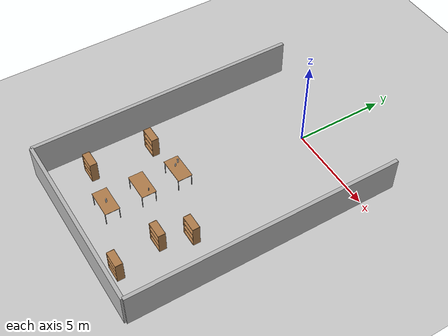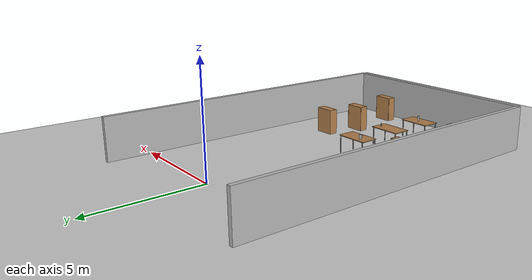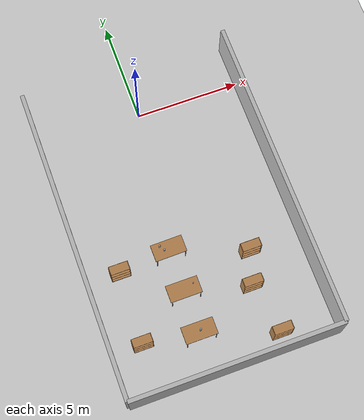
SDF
<sdf version="1.7">
 <world name="default">
  <model name="ground_plane">
   <static>1</static>
   <link name="link">
    <collision name="collision">
     <geometry><plane><normal>0 0 1</normal><size>100 100</size></plane></geometry>
     <surface><friction><ode><mu>100</mu><mu2>50</mu2></ode></friction></surface>
    </collision>
    <visual name="visual">
     <cast_shadows>0</cast_shadows>
     <geometry><plane><normal>0 0 1</normal><size>100 100</size></plane></geometry>
     <material>
      <script><uri>file://media/materials/scripts/gazebo.material</uri><name>Gazebo/Grey</name></script>
     </material>
    </visual>
    <velocity_decay><linear>0</linear><angular>0</angular></velocity_decay>
   </link>
  </model>
  <model name="wall_1_model">
   <pose>0 -13 1 0 -0 0</pose>
   <static>1</static>
   <link name="wall_1_body">
    <inertial>
     <mass>1</mass>
     <inertia><ixx>1</ixx><ixy>0</ixy><ixz>0</ixz><iyy>1</iyy><iyz>0</iyz><izz>1</izz></inertia>
    </inertial>
    <collision name="collision"><geometry><box><size>10 0.2 2</size></box></geometry></collision>
    <visual name="visual"><geometry><box><size>10 0.2 2</size></box></geometry></visual>
    <velocity_decay><linear>0</linear><angular>0</angular></velocity_decay>
   </link>
  </model>
  <model name="wall_3_model">
   <pose>-5 -5.5 1 0 -0 0</pose>
   <static>1</static>
   <link name="wall_3_body">
    <inertial>
     <mass>1</mass>
     <inertia><ixx>1</ixx><ixy>0</ixy><ixz>0</ixz><iyy>1</iyy><iyz>0</iyz><izz>1</izz></inertia>
    </inertial>
    <collision name="collision"><geometry><box><size>0.2 15 2</size></box></geometry></collision>
    <visual name="visual"><geometry><box><size>0.2 15 2</size></box></geometry></visual>
    <velocity_decay><linear>0</linear><angular>0</angular></velocity_decay>
   </link>
  </model>
  <model name="wall_4_model">
   <pose>5 -5.5 1 0 -0 0</pose>
   <static>1</static>
   <link name="wall_4_body">
    <inertial>
     <mass>1</mass>
     <inertia><ixx>1</ixx><ixy>0</ixy><ixz>0</ixz><iyy>1</iyy><iyz>0</iyz><izz>1</izz></inertia>
    </inertial>
    <collision name="collision"><geometry><box><size>0.2 15 2</size></box></geometry></collision>
    <visual name="visual"><geometry><box><size>0.2 15 2</size></box></geometry></visual>
    <velocity_decay><linear>0</linear><angular>0</angular></velocity_decay>
   </link>
  </model>
  <model name="bookshelf">
   <static>0</static>
   <link name="link">
    <inertial>
     <mass>1</mass>
     <inertia><ixx>1</ixx><ixy>0</ixy><ixz>0</ixz><iyy>1</iyy><iyz>0</iyz><izz>1</izz></inertia>
    </inertial>
    <collision name="back">
     <pose>0 0.005 0.6 0 -0 0</pose>
     <geometry><box><size>0.9 0.01 1.2</size></box></geometry>
    </collision>
    <visual name="visual1">
     <pose>0 0.005 0.6 0 -0 0</pose>
     <geometry><box><size>0.9 0.01 1.2</size></box></geometry>
     <material>
      <script><uri>file://media/materials/scripts/gazebo.material</uri><name>Gazebo/Wood</name></script>
     </material>
    </visual>
    <collision name="left_side">
     <pose>0.45 -0.195 0.6 0 -0 0</pose>
     <geometry><box><size>0.02 0.4 1.2</size></box></geometry>
    </collision>
    <visual name="visual2">
     <pose>0.45 -0.195 0.6 0 -0 0</pose>
     <geometry><box><size>0.02 0.4 1.2</size></box></geometry>
     <material>
      <script><uri>file://media/materials/scripts/gazebo.material</uri><name>Gazebo/Wood</name></script>
     </material>
    </visual>
    <collision name="right_side">
     <pose>-0.45 -0.195 0.6 0 -0 0</pose>
     <geometry><box><size>0.02 0.4 1.2</size></box></geometry>
    </collision>
    <visual name="visual3">
     <pose>-0.45 -0.195 0.6 0 -0 0</pose>
     <geometry><box><size>0.02 0.4 1.2</size></box></geometry>
     <material>
      <script><uri>file://media/materials/scripts/gazebo.material</uri><name>Gazebo/Wood</name></script>
     </material>
    </visual>
    <collision name="bottom">
     <pose>0 -0.195 0.03 0 -0 0</pose>
     <geometry><box><size>0.88 0.4 0.06</size></box></geometry>
    </collision>
    <visual name="visual4">
     <pose>0 -0.195 0.03 0 -0 0</pose>
     <geometry><box><size>0.88 0.4 0.06</size></box></geometry>
     <material>
      <script><uri>file://media/materials/scripts/gazebo.material</uri><name>Gazebo/Wood</name></script>
     </material>
    </visual>
    <collision name="top">
     <pose>0 -0.195 1.19 0 -0 0</pose>
     <geometry><box><size>0.88 0.4 0.02</size></box></geometry>
    </collision>
    <visual name="visual5">
     <pose>0 -0.195 1.19 0 -0 0</pose>
     <geometry><box><size>0.88 0.4 0.02</size></box></geometry>
     <material>
      <script><uri>file://media/materials/scripts/gazebo.material</uri><name>Gazebo/Wood</name></script>
     </material>
    </visual>
    <collision name="low_shelf">
     <pose>0 -0.195 0.43 0 -0 0</pose>
     <geometry><box><size>0.88 0.4 0.02</size></box></geometry>
    </collision>
    <visual name="visual6">
     <pose>0 -0.195 0.43 0 -0 0</pose>
     <geometry><box><size>0.88 0.4 0.02</size></box></geometry>
     <material>
      <script><uri>file://media/materials/scripts/gazebo.material</uri><name>Gazebo/Wood</name></script>
     </material>
    </visual>
    <collision name="high_shelf">
     <pose>0 -0.195 0.8 0 -0 0</pose>
     <geometry><box><size>0.88 0.4 0.02</size></box></geometry>
    </collision>
    <visual name="visual7">
     <pose>0 -0.195 0.8 0 -0 0</pose>
     <geometry><box><size>0.88 0.4 0.02</size></box></geometry>
     <material>
      <script><uri>file://media/materials/scripts/gazebo.material</uri><name>Gazebo/Wood</name></script>
     </material>
    </visual>
    <velocity_decay><linear>0</linear><angular>0</angular></velocity_decay>
   </link>
   <pose>2 -9.55401 1e-06 -3.5e-05 -2e-06 0</pose>
  </model>
  <model name="table">
   <static>0</static>
   <link name="link">
    <collision name="surface">
     <pose>0 0 0.9 0 -0 0</pose>
     <geometry><box><size>1.5 0.8 0.03</size></box></geometry>
    </collision>
    <visual name="visual1">
     <pose>0 0 0.9 0 -0 0</pose>
     <geometry><box><size>1.5 0.8 0.03</size></box></geometry>
     <material>
      <script><uri>file://media/materials/scripts/gazebo.material</uri><name>Gazebo/Wood</name></script>
     </material>
    </visual>
    <collision name="front_left_leg">
     <pose>0.68 0.38 0.5 0 -0 0</pose>
     <geometry><cylinder><radius>0.02</radius><length>0.8</length></cylinder></geometry>
    </collision>
    <visual name="front_left_leg">
     <pose>0.68 0.38 0.5 0 -0 0</pose>
     <geometry><cylinder><radius>0.02</radius><length>0.8</length></cylinder></geometry>
     <material>
      <script><uri>file://media/materials/scripts/gazebo.material</uri><name>Gazebo/Grey</name></script>
     </material>
    </visual>
    <collision name="front_right_leg">
     <pose>0.68 -0.38 0.5 0 -0 0</pose>
     <geometry><cylinder><radius>0.02</radius><length>0.8</length></cylinder></geometry>
    </collision>
    <visual name="front_right_leg">
     <pose>0.68 -0.38 0.5 0 -0 0</pose>
     <geometry><cylinder><radius>0.02</radius><length>0.8</length></cylinder></geometry>
     <material>
      <script><uri>file://media/materials/scripts/gazebo.material</uri><name>Gazebo/Grey</name></script>
     </material>
    </visual>
    <collision name="back_right_leg">
     <pose>-0.68 -0.38 0.5 0 -0 0</pose>
     <geometry><cylinder><radius>0.02</radius><length>0.8</length></cylinder></geometry>
    </collision>
    <visual name="back_right_leg">
     <pose>-0.68 -0.38 0.5 0 -0 0</pose>
     <geometry><cylinder><radius>0.02</radius><length>0.8</length></cylinder></geometry>
     <material>
      <script><uri>file://media/materials/scripts/gazebo.material</uri><name>Gazebo/Grey</name></script>
     </material>
    </visual>
    <collision name="back_left_leg">
     <pose>-0.68 0.38 0.5 0 -0 0</pose>
     <geometry><cylinder><radius>0.02</radius><length>0.8</length></cylinder></geometry>
    </collision>
    <visual name="back_left_leg">
     <pose>-0.68 0.38 0.5 0 -0 0</pose>
     <geometry><cylinder><radius>0.02</radius><length>0.8</length></cylinder></geometry>
     <material>
      <script><uri>file://media/materials/scripts/gazebo.material</uri><name>Gazebo/Grey</name></script>
     </material>
    </visual>
    <velocity_decay><linear>0</linear><angular>0</angular></velocity_decay>
    <inertial>
     <inertia><ixx>1</ixx><ixy>0</ixy><ixz>0</ixz><iyy>1</iyy><iyz>0</iyz><izz>1</izz></inertia>
     <mass>1</mass>
    </inertial>
   </link>
   <pose>-1.00063 -8.99571 -0.100243 -0 7e-06 -0.000534</pose>
  </model>
  <model name="bookshelf_2">
   <static>0</static>
   <link name="link">
    <inertial>
     <mass>1</mass>
     <inertia><ixx>1</ixx><ixy>0</ixy><ixz>0</ixz><iyy>1</iyy><iyz>0</iyz><izz>1</izz></inertia>
    </inertial>
    <collision name="back">
     <pose>0 0.005 0.6 0 -0 0</pose>
     <geometry><box><size>0.9 0.01 1.2</size></box></geometry>
    </collision>
    <visual name="visual1">
     <pose>0 0.005 0.6 0 -0 0</pose>
     <geometry><box><size>0.9 0.01 1.2</size></box></geometry>
     <material>
      <script><uri>file://media/materials/scripts/gazebo.material</uri><name>Gazebo/Wood</name></script>
     </material>
    </visual>
    <collision name="left_side">
     <pose>0.45 -0.195 0.6 0 -0 0</pose>
     <geometry><box><size>0.02 0.4 1.2</size></box></geometry>
    </collision>
    <visual name="visual2">
     <pose>0.45 -0.195 0.6 0 -0 0</pose>
     <geometry><box><size>0.02 0.4 1.2</size></box></geometry>
     <material>
      <script><uri>file://media/materials/scripts/gazebo.material</uri><name>Gazebo/Wood</name></script>
     </material>
    </visual>
    <collision name="right_side">
     <pose>-0.45 -0.195 0.6 0 -0 0</pose>
     <geometry><box><size>0.02 0.4 1.2</size></box></geometry>
    </collision>
    <visual name="visual3">
     <pose>-0.45 -0.195 0.6 0 -0 0</pose>
     <geometry><box><size>0.02 0.4 1.2</size></box></geometry>
     <material>
      <script><uri>file://media/materials/scripts/gazebo.material</uri><name>Gazebo/Wood</name></script>
     </material>
    </visual>
    <collision name="bottom">
     <pose>0 -0.195 0.03 0 -0 0</pose>
     <geometry><box><size>0.88 0.4 0.06</size></box></geometry>
    </collision>
    <visual name="visual4">
     <pose>0 -0.195 0.03 0 -0 0</pose>
     <geometry><box><size>0.88 0.4 0.06</size></box></geometry>
     <material>
      <script><uri>file://media/materials/scripts/gazebo.material</uri><name>Gazebo/Wood</name></script>
     </material>
    </visual>
    <collision name="top">
     <pose>0 -0.195 1.19 0 -0 0</pose>
     <geometry><box><size>0.88 0.4 0.02</size></box></geometry>
    </collision>
    <visual name="visual5">
     <pose>0 -0.195 1.19 0 -0 0</pose>
     <geometry><box><size>0.88 0.4 0.02</size></box></geometry>
     <material>
      <script><uri>file://media/materials/scripts/gazebo.material</uri><name>Gazebo/Wood</name></script>
     </material>
    </visual>
    <collision name="low_shelf">
     <pose>0 -0.195 0.43 0 -0 0</pose>
     <geometry><box><size>0.88 0.4 0.02</size></box></geometry>
    </collision>
    <visual name="visual6">
     <pose>0 -0.195 0.43 0 -0 0</pose>
     <geometry><box><size>0.88 0.4 0.02</size></box></geometry>
     <material>
      <script><uri>file://media/materials/scripts/gazebo.material</uri><name>Gazebo/Wood</name></script>
     </material>
    </visual>
    <collision name="high_shelf">
     <pose>0 -0.195 0.8 0 -0 0</pose>
     <geometry><box><size>0.88 0.4 0.02</size></box></geometry>
    </collision>
    <visual name="visual7">
     <pose>0 -0.195 0.8 0 -0 0</pose>
     <geometry><box><size>0.88 0.4 0.02</size></box></geometry>
     <material>
      <script><uri>file://media/materials/scripts/gazebo.material</uri><name>Gazebo/Wood</name></script>
     </material>
    </visual>
    <velocity_decay><linear>0</linear><angular>0</angular></velocity_decay>
   </link>
   <pose>-3.41849 -7 0 -3.5e-05 -0 -0</pose>
  </model>
  <model name="table_0">
   <static>0</static>
   <link name="link">
    <collision name="surface">
     <pose>0 0 0.9 0 -0 0</pose>
     <geometry><box><size>1.5 0.8 0.03</size></box></geometry>
    </collision>
    <visual name="visual1">
     <pose>0 0 0.9 0 -0 0</pose>
     <geometry><box><size>1.5 0.8 0.03</size></box></geometry>
     <material>
      <script><uri>file://media/materials/scripts/gazebo.material</uri><name>Gazebo/Wood</name></script>
     </material>
    </visual>
    <collision name="front_left_leg">
     <pose>0.68 0.38 0.5 0 -0 0</pose>
     <geometry><cylinder><radius>0.02</radius><length>0.8</length></cylinder></geometry>
    </collision>
    <visual name="front_left_leg">
     <pose>0.68 0.38 0.5 0 -0 0</pose>
     <geometry><cylinder><radius>0.02</radius><length>0.8</length></cylinder></geometry>
     <material>
      <script><uri>file://media/materials/scripts/gazebo.material</uri><name>Gazebo/Grey</name></script>
     </material>
    </visual>
    <collision name="front_right_leg">
     <pose>0.68 -0.38 0.5 0 -0 0</pose>
     <geometry><cylinder><radius>0.02</radius><length>0.8</length></cylinder></geometry>
    </collision>
    <visual name="front_right_leg">
     <pose>0.68 -0.38 0.5 0 -0 0</pose>
     <geometry><cylinder><radius>0.02</radius><length>0.8</length></cylinder></geometry>
     <material>
      <script><uri>file://media/materials/scripts/gazebo.material</uri><name>Gazebo/Grey</name></script>
     </material>
    </visual>
    <collision name="back_right_leg">
     <pose>-0.68 -0.38 0.5 0 -0 0</pose>
     <geometry><cylinder><radius>0.02</radius><length>0.8</length></cylinder></geometry>
    </collision>
    <visual name="back_right_leg">
     <pose>-0.68 -0.38 0.5 0 -0 0</pose>
     <geometry><cylinder><radius>0.02</radius><length>0.8</length></cylinder></geometry>
     <material>
      <script><uri>file://media/materials/scripts/gazebo.material</uri><name>Gazebo/Grey</name></script>
     </material>
    </visual>
    <collision name="back_left_leg">
     <pose>-0.68 0.38 0.5 0 -0 0</pose>
     <geometry><cylinder><radius>0.02</radius><length>0.8</length></cylinder></geometry>
    </collision>
    <visual name="back_left_leg">
     <pose>-0.68 0.38 0.5 0 -0 0</pose>
     <geometry><cylinder><radius>0.02</radius><length>0.8</length></cylinder></geometry>
     <material>
      <script><uri>file://media/materials/scripts/gazebo.material</uri><name>Gazebo/Grey</name></script>
     </material>
    </visual>
    <velocity_decay><linear>0</linear><angular>0</angular></velocity_decay>
    <inertial>
     <inertia><ixx>1</ixx><ixy>0</ixy><ixz>0</ixz><iyy>1</iyy><iyz>0</iyz><izz>1</izz></inertia>
     <mass>1</mass>
    </inertial>
   </link>
   <pose>-0.993483 -6.97206 -0.111448 -0.000541 -0.001752 0.010892</pose>
  </model>
  <model name="table_1">
   <static>0</static>
   <link name="link">
    <collision name="surface">
     <pose>0 0 0.9 0 -0 0</pose>
     <geometry><box><size>1.5 0.8 0.03</size></box></geometry>
    </collision>
    <visual name="visual1">
     <pose>0 0 0.9 0 -0 0</pose>
     <geometry><box><size>1.5 0.8 0.03</size></box></geometry>
     <material>
      <script><uri>file://media/materials/scripts/gazebo.material</uri><name>Gazebo/Wood</name></script>
     </material>
    </visual>
    <collision name="front_left_leg">
     <pose>0.68 0.38 0.5 0 -0 0</pose>
     <geometry><cylinder><radius>0.02</radius><length>0.8</length></cylinder></geometry>
    </collision>
    <visual name="front_left_leg">
     <pose>0.68 0.38 0.5 0 -0 0</pose>
     <geometry><cylinder><radius>0.02</radius><length>0.8</length></cylinder></geometry>
     <material>
      <script><uri>file://media/materials/scripts/gazebo.material</uri><name>Gazebo/Grey</name></script>
     </material>
    </visual>
    <collision name="front_right_leg">
     <pose>0.68 -0.38 0.5 0 -0 0</pose>
     <geometry><cylinder><radius>0.02</radius><length>0.8</length></cylinder></geometry>
    </collision>
    <visual name="front_right_leg">
     <pose>0.68 -0.38 0.5 0 -0 0</pose>
     <geometry><cylinder><radius>0.02</radius><length>0.8</length></cylinder></geometry>
     <material>
      <script><uri>file://media/materials/scripts/gazebo.material</uri><name>Gazebo/Grey</name></script>
     </material>
    </visual>
    <collision name="back_right_leg">
     <pose>-0.68 -0.38 0.5 0 -0 0</pose>
     <geometry><cylinder><radius>0.02</radius><length>0.8</length></cylinder></geometry>
    </collision>
    <visual name="back_right_leg">
     <pose>-0.68 -0.38 0.5 0 -0 0</pose>
     <geometry><cylinder><radius>0.02</radius><length>0.8</length></cylinder></geometry>
     <material>
      <script><uri>file://media/materials/scripts/gazebo.material</uri><name>Gazebo/Grey</name></script>
     </material>
    </visual>
    <collision name="back_left_leg">
     <pose>-0.68 0.38 0.5 0 -0 0</pose>
     <geometry><cylinder><radius>0.02</radius><length>0.8</length></cylinder></geometry>
    </collision>
    <visual name="back_left_leg">
     <pose>-0.68 0.38 0.5 0 -0 0</pose>
     <geometry><cylinder><radius>0.02</radius><length>0.8</length></cylinder></geometry>
     <material>
      <script><uri>file://media/materials/scripts/gazebo.material</uri><name>Gazebo/Grey</name></script>
     </material>
    </visual>
    <velocity_decay><linear>0</linear><angular>0</angular></velocity_decay>
    <inertial>
     <inertia><ixx>1</ixx><ixy>0</ixy><ixz>0</ixz><iyy>1</iyy><iyz>0</iyz><izz>1</izz></inertia>
     <mass>1</mass>
    </inertial>
   </link>
   <pose>-1.00361 -10.9913 -0.104526 0 0.000105 -0.00183</pose>
  </model>
  <model name="bookshelf_3">
   <static>0</static>
   <link name="link">
    <inertial>
     <mass>1</mass>
     <inertia><ixx>1</ixx><ixy>0</ixy><ixz>0</ixz><iyy>1</iyy><iyz>0</iyz><izz>1</izz></inertia>
    </inertial>
    <collision name="back">
     <pose>0 0.005 0.6 0 -0 0</pose>
     <geometry><box><size>0.9 0.01 1.2</size></box></geometry>
    </collision>
    <visual name="visual1">
     <pose>0 0.005 0.6 0 -0 0</pose>
     <geometry><box><size>0.9 0.01 1.2</size></box></geometry>
     <material>
      <script><uri>file://media/materials/scripts/gazebo.material</uri><name>Gazebo/Wood</name></script>
     </material>
    </visual>
    <collision name="left_side">
     <pose>0.45 -0.195 0.6 0 -0 0</pose>
     <geometry><box><size>0.02 0.4 1.2</size></box></geometry>
    </collision>
    <visual name="visual2">
     <pose>0.45 -0.195 0.6 0 -0 0</pose>
     <geometry><box><size>0.02 0.4 1.2</size></box></geometry>
     <material>
      <script><uri>file://media/materials/scripts/gazebo.material</uri><name>Gazebo/Wood</name></script>
     </material>
    </visual>
    <collision name="right_side">
     <pose>-0.45 -0.195 0.6 0 -0 0</pose>
     <geometry><box><size>0.02 0.4 1.2</size></box></geometry>
    </collision>
    <visual name="visual3">
     <pose>-0.45 -0.195 0.6 0 -0 0</pose>
     <geometry><box><size>0.02 0.4 1.2</size></box></geometry>
     <material>
      <script><uri>file://media/materials/scripts/gazebo.material</uri><name>Gazebo/Wood</name></script>
     </material>
    </visual>
    <collision name="bottom">
     <pose>0 -0.195 0.03 0 -0 0</pose>
     <geometry><box><size>0.88 0.4 0.06</size></box></geometry>
    </collision>
    <visual name="visual4">
     <pose>0 -0.195 0.03 0 -0 0</pose>
     <geometry><box><size>0.88 0.4 0.06</size></box></geometry>
     <material>
      <script><uri>file://media/materials/scripts/gazebo.material</uri><name>Gazebo/Wood</name></script>
     </material>
    </visual>
    <collision name="top">
     <pose>0 -0.195 1.19 0 -0 0</pose>
     <geometry><box><size>0.88 0.4 0.02</size></box></geometry>
    </collision>
    <visual name="visual5">
     <pose>0 -0.195 1.19 0 -0 0</pose>
     <geometry><box><size>0.88 0.4 0.02</size></box></geometry>
     <material>
      <script><uri>file://media/materials/scripts/gazebo.material</uri><name>Gazebo/Wood</name></script>
     </material>
    </visual>
    <collision name="low_shelf">
     <pose>0 -0.195 0.43 0 -0 0</pose>
     <geometry><box><size>0.88 0.4 0.02</size></box></geometry>
    </collision>
    <visual name="visual6">
     <pose>0 -0.195 0.43 0 -0 0</pose>
     <geometry><box><size>0.88 0.4 0.02</size></box></geometry>
     <material>
      <script><uri>file://media/materials/scripts/gazebo.material</uri><name>Gazebo/Wood</name></script>
     </material>
    </visual>
    <collision name="high_shelf">
     <pose>0 -0.195 0.8 0 -0 0</pose>
     <geometry><box><size>0.88 0.4 0.02</size></box></geometry>
    </collision>
    <visual name="visual7">
     <pose>0 -0.195 0.8 0 -0 0</pose>
     <geometry><box><size>0.88 0.4 0.02</size></box></geometry>
     <material>
      <script><uri>file://media/materials/scripts/gazebo.material</uri><name>Gazebo/Wood</name></script>
     </material>
    </visual>
    <velocity_decay><linear>0</linear><angular>0</angular></velocity_decay>
   </link>
   <pose>2.45055 -12 1e-06 -8e-05 -0 -0</pose>
  </model>
  <model name="bookshelf_4">
   <static>0</static>
   <link name="link">
    <inertial>
     <mass>1</mass>
     <inertia><ixx>1</ixx><ixy>0</ixy><ixz>0</ixz><iyy>1</iyy><iyz>0</iyz><izz>1</izz></inertia>
    </inertial>
    <collision name="back">
     <pose>0 0.005 0.6 0 -0 0</pose>
     <geometry><box><size>0.9 0.01 1.2</size></box></geometry>
    </collision>
    <visual name="visual1">
     <pose>0 0.005 0.6 0 -0 0</pose>
     <geometry><box><size>0.9 0.01 1.2</size></box></geometry>
     <material>
      <script><uri>file://media/materials/scripts/gazebo.material</uri><name>Gazebo/Wood</name></script>
     </material>
    </visual>
    <collision name="left_side">
     <pose>0.45 -0.195 0.6 0 -0 0</pose>
     <geometry><box><size>0.02 0.4 1.2</size></box></geometry>
    </collision>
    <visual name="visual2">
     <pose>0.45 -0.195 0.6 0 -0 0</pose>
     <geometry><box><size>0.02 0.4 1.2</size></box></geometry>
     <material>
      <script><uri>file://media/materials/scripts/gazebo.material</uri><name>Gazebo/Wood</name></script>
     </material>
    </visual>
    <collision name="right_side">
     <pose>-0.45 -0.195 0.6 0 -0 0</pose>
     <geometry><box><size>0.02 0.4 1.2</size></box></geometry>
    </collision>
    <visual name="visual3">
     <pose>-0.45 -0.195 0.6 0 -0 0</pose>
     <geometry><box><size>0.02 0.4 1.2</size></box></geometry>
     <material>
      <script><uri>file://media/materials/scripts/gazebo.material</uri><name>Gazebo/Wood</name></script>
     </material>
    </visual>
    <collision name="bottom">
     <pose>0 -0.195 0.03 0 -0 0</pose>
     <geometry><box><size>0.88 0.4 0.06</size></box></geometry>
    </collision>
    <visual name="visual4">
     <pose>0 -0.195 0.03 0 -0 0</pose>
     <geometry><box><size>0.88 0.4 0.06</size></box></geometry>
     <material>
      <script><uri>file://media/materials/scripts/gazebo.material</uri><name>Gazebo/Wood</name></script>
     </material>
    </visual>
    <collision name="top">
     <pose>0 -0.195 1.19 0 -0 0</pose>
     <geometry><box><size>0.88 0.4 0.02</size></box></geometry>
    </collision>
    <visual name="visual5">
     <pose>0 -0.195 1.19 0 -0 0</pose>
     <geometry><box><size>0.88 0.4 0.02</size></box></geometry>
     <material>
      <script><uri>file://media/materials/scripts/gazebo.material</uri><name>Gazebo/Wood</name></script>
     </material>
    </visual>
    <collision name="low_shelf">
     <pose>0 -0.195 0.43 0 -0 0</pose>
     <geometry><box><size>0.88 0.4 0.02</size></box></geometry>
    </collision>
    <visual name="visual6">
     <pose>0 -0.195 0.43 0 -0 0</pose>
     <geometry><box><size>0.88 0.4 0.02</size></box></geometry>
     <material>
      <script><uri>file://media/materials/scripts/gazebo.material</uri><name>Gazebo/Wood</name></script>
     </material>
    </visual>
    <collision name="high_shelf">
     <pose>0 -0.195 0.8 0 -0 0</pose>
     <geometry><box><size>0.88 0.4 0.02</size></box></geometry>
    </collision>
    <visual name="visual7">
     <pose>0 -0.195 0.8 0 -0 0</pose>
     <geometry><box><size>0.88 0.4 0.02</size></box></geometry>
     <material>
      <script><uri>file://media/materials/scripts/gazebo.material</uri><name>Gazebo/Wood</name></script>
     </material>
    </visual>
    <velocity_decay><linear>0</linear><angular>0</angular></velocity_decay>
   </link>
   <pose>2.51316 -8 0 -2.9e-05 0 0</pose>
  </model>
  <model name="bookshelf_5">
   <static>0</static>
   <link name="link">
    <inertial>
     <mass>1</mass>
     <inertia><ixx>1</ixx><ixy>0</ixy><ixz>0</ixz><iyy>1</iyy><iyz>0</iyz><izz>1</izz></inertia>
    </inertial>
    <collision name="back">
     <pose>0 0.005 0.6 0 -0 0</pose>
     <geometry><box><size>0.9 0.01 1.2</size></box></geometry>
    </collision>
    <visual name="visual1">
     <pose>0 0.005 0.6 0 -0 0</pose>
     <geometry><box><size>0.9 0.01 1.2</size></box></geometry>
     <material>
      <script><uri>file://media/materials/scripts/gazebo.material</uri><name>Gazebo/Wood</name></script>
     </material>
    </visual>
    <collision name="left_side">
     <pose>0.45 -0.195 0.6 0 -0 0</pose>
     <geometry><box><size>0.02 0.4 1.2</size></box></geometry>
    </collision>
    <visual name="visual2">
     <pose>0.45 -0.195 0.6 0 -0 0</pose>
     <geometry><box><size>0.02 0.4 1.2</size></box></geometry>
     <material>
      <script><uri>file://media/materials/scripts/gazebo.material</uri><name>Gazebo/Wood</name></script>
     </material>
    </visual>
    <collision name="right_side">
     <pose>-0.45 -0.195 0.6 0 -0 0</pose>
     <geometry><box><size>0.02 0.4 1.2</size></box></geometry>
    </collision>
    <visual name="visual3">
     <pose>-0.45 -0.195 0.6 0 -0 0</pose>
     <geometry><box><size>0.02 0.4 1.2</size></box></geometry>
     <material>
      <script><uri>file://media/materials/scripts/gazebo.material</uri><name>Gazebo/Wood</name></script>
     </material>
    </visual>
    <collision name="bottom">
     <pose>0 -0.195 0.03 0 -0 0</pose>
     <geometry><box><size>0.88 0.4 0.06</size></box></geometry>
    </collision>
    <visual name="visual4">
     <pose>0 -0.195 0.03 0 -0 0</pose>
     <geometry><box><size>0.88 0.4 0.06</size></box></geometry>
     <material>
      <script><uri>file://media/materials/scripts/gazebo.material</uri><name>Gazebo/Wood</name></script>
     </material>
    </visual>
    <collision name="top">
     <pose>0 -0.195 1.19 0 -0 0</pose>
     <geometry><box><size>0.88 0.4 0.02</size></box></geometry>
    </collision>
    <visual name="visual5">
     <pose>0 -0.195 1.19 0 -0 0</pose>
     <geometry><box><size>0.88 0.4 0.02</size></box></geometry>
     <material>
      <script><uri>file://media/materials/scripts/gazebo.material</uri><name>Gazebo/Wood</name></script>
     </material>
    </visual>
    <collision name="low_shelf">
     <pose>0 -0.195 0.43 0 -0 0</pose>
     <geometry><box><size>0.88 0.4 0.02</size></box></geometry>
    </collision>
    <visual name="visual6">
     <pose>0 -0.195 0.43 0 -0 0</pose>
     <geometry><box><size>0.88 0.4 0.02</size></box></geometry>
     <material>
      <script><uri>file://media/materials/scripts/gazebo.material</uri><name>Gazebo/Wood</name></script>
     </material>
    </visual>
    <collision name="high_shelf">
     <pose>0 -0.195 0.8 0 -0 0</pose>
     <geometry><box><size>0.88 0.4 0.02</size></box></geometry>
    </collision>
    <visual name="visual7">
     <pose>0 -0.195 0.8 0 -0 0</pose>
     <geometry><box><size>0.88 0.4 0.02</size></box></geometry>
     <material>
      <script><uri>file://media/materials/scripts/gazebo.material</uri><name>Gazebo/Wood</name></script>
     </material>
    </visual>
    <velocity_decay><linear>0</linear><angular>0</angular></velocity_decay>
   </link>
   <pose>-3.53929 -10.4222 -1e-06 -4.4e-05 3e-06 0</pose>
  </model>
  <model name="pringles">
   <static>0</static>
   <link name="link">
    <inertial>
     <mass>0.25</mass>
     <inertia><ixx>0</ixx><ixy>0</ixy><ixz>0</ixz><iyy>0</iyy><iyz>0</iyz><izz>0</izz></inertia>
    </inertial>
    <collision name="collision">
     <geometry><cylinder><radius>0.04</radius><length>0.235</length></cylinder></geometry>
    </collision>
    <visual name="visual">
     <geometry><cylinder><radius>0.04</radius><length>0.235</length></cylinder></geometry>
     <material>
      <script>
       <uri>model://pringles/material/scripts</uri>
       <uri>model://pringles/material/textures</uri>
       <name>Custom/pringles</name>
      </script>
     </material>
    </visual>
    <velocity_decay><linear>0</linear><angular>0</angular></velocity_decay>
   </link>
   <pose>-1.35519 -6.77645 0.920328 -0.001282 -0.001863 -0.027844</pose>
  </model>
  <model name="sprite">
   <static>0</static>
   <link name="link">
    <inertial>
     <mass>0.25</mass>
     <inertia><ixx>0</ixx><ixy>0</ixy><ixz>0</ixz><iyy>0</iyy><iyz>0</iyz><izz>0</izz></inertia>
    </inertial>
    <collision name="collision">
     <pose>0 0 0.075 -3.14159 -0 0</pose>
     <geometry><cylinder><radius>0.04</radius><length>0.15</length></cylinder></geometry>
    </collision>
    <visual name="visual">
     <pose>0 0 0.075 -3.14159 -0 0</pose>
     <geometry><cylinder><radius>0.04</radius><length>0.15</length></cylinder></geometry>
     <material>
      <script>
       <uri>model://sprite/material/scripts</uri>
       <uri>model://sprite/material/textures</uri>
       <name>Custom/sprite</name>
      </script>
     </material>
    </visual>
    <velocity_decay><linear>0</linear><angular>0</angular></velocity_decay>
   </link>
   <pose>-1.20739 -6.99674 0.803181 -0.000319 -0.001906 0.005116</pose>
  </model>
  <model name="biscuits_pack">
   <static>0</static>
   <link name="link">
    <inertial>
     <mass>0.01</mass>
     <inertia><ixx>0.001</ixx><ixy>0</ixy><ixz>0</ixz><iyy>0.001</iyy><iyz>0</iyz><izz>0.001</izz></inertia>
    </inertial>
    <collision name="collision">
     <geometry><cylinder><radius>0.025</radius><length>0.15</length></cylinder></geometry>
     <surface><contact><ode><min_depth>0.005</min_depth></ode></contact></surface>
    </collision>
    <visual name="visual">
     <geometry><cylinder><radius>0.025</radius><length>0.15</length></cylinder></geometry>
     <material>
      <script>
       <uri>model://biscuits_pack/material/scripts</uri>
       <uri>model://biscuits_pack/material/textures</uri>
       <name>Custom/biscuits_pack</name>
      </script>
     </material>
    </visual>
   </link>
   <pose>-0.5171 -8.89172 0.889751 0.000198 0.000202 -0.570596</pose>
  </model>
  <model name="pringles2">
   <static>0</static>
   <link name="link">
    <inertial>
     <mass>0.25</mass>
     <inertia><ixx>0</ixx><ixy>0</ixy><ixz>0</ixz><iyy>0</iyy><iyz>0</iyz><izz>0</izz></inertia>
    </inertial>
    <collision name="collision">
     <pose>0 0 0.12 -3.14159 -0 0</pose>
     <geometry><cylinder><radius>0.04</radius><length>0.235</length></cylinder></geometry>
    </collision>
    <visual name="visual">
     <pose>0 0 0.12 -3.14159 -0 0</pose>
     <geometry><cylinder><radius>0.04</radius><length>0.235</length></cylinder></geometry>
     <material>
      <script>
       <uri>model://pringles2/material/scripts</uri>
       <uri>model://pringles2/material/textures</uri>
       <name>Custom/pringles2</name>
      </script>
     </material>
    </visual>
    <velocity_decay><linear>0</linear><angular>0</angular></velocity_decay>
   </link>
   <pose>-0.939319 -10.9918 0.807962 0.000229 0.000249 0.236579</pose>
  </model>
 </world>
</sdf>
